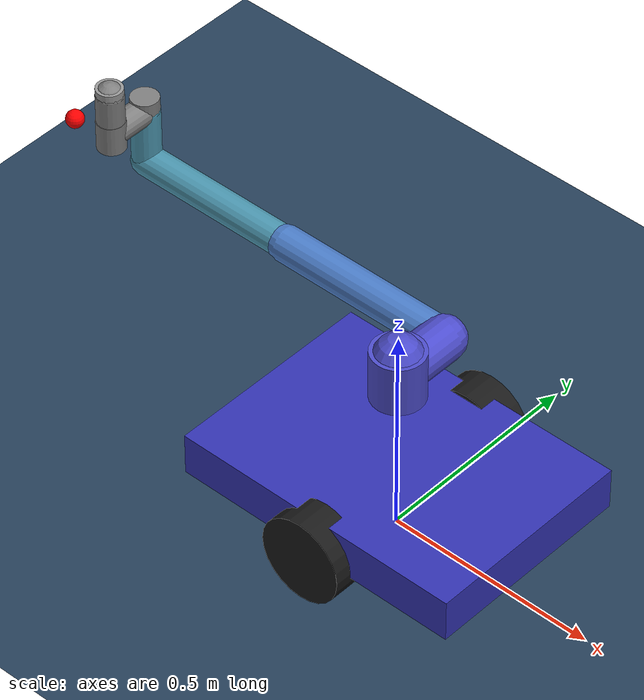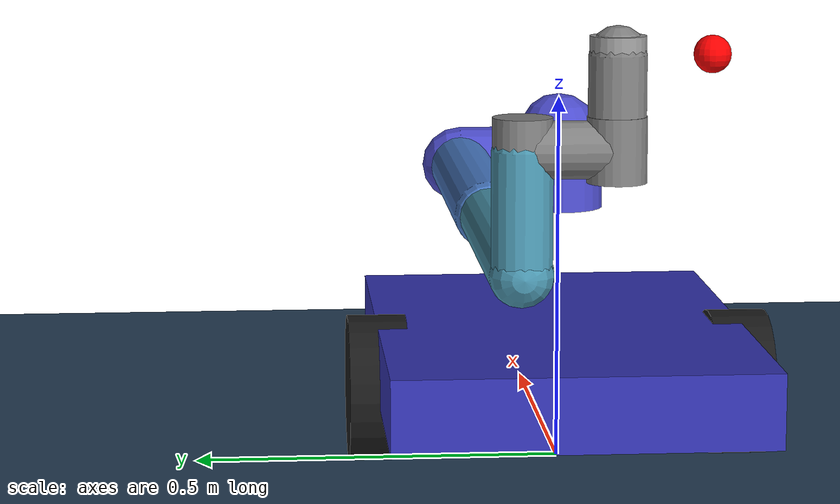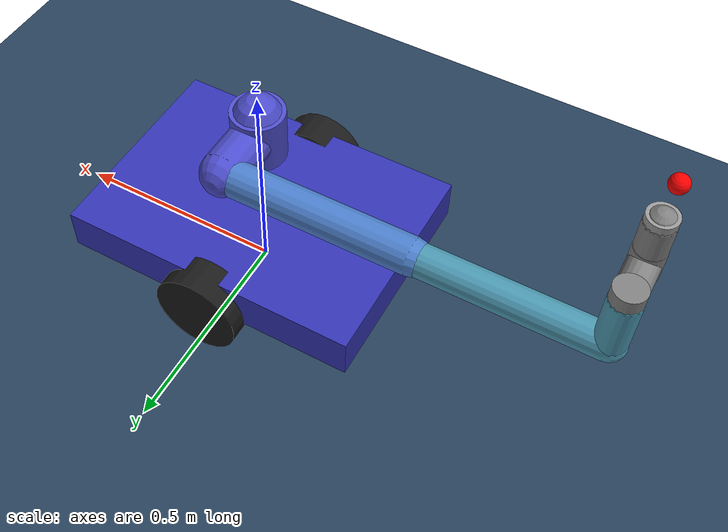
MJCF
<mujoco model="wheeled_ur5e_with_wheels">
  <compiler angle="radian"/>

  <option integrator="implicitfast"/>

  <visual>
    <global azimuth="120" elevation="-20"/>
    <headlight ambient="0.3 0.3 0.3" diffuse="0.6 0.6 0.6" specular="0 0 0"/>
    <map force="0.1" zfar="30"/>
    <rgba haze="0.15 0.25 0.35 1"/>
  </visual>

  <default>
    <joint limited="true"/>
    <geom solref="0.008"/>
    <general ctrllimited="true"/>
  </default>

  <asset>
    <texture type="skybox" colorspace="auto" builtin="gradient" rgb1="0.3 0.5 0.7" rgb2="0 0 0" width="512" height="3072"/>
    <texture type="2d" colorspace="auto" name="groundplane" builtin="checker" mark="edge" rgb1="0.2 0.3 0.4" rgb2="0.1 0.2 0.3" markrgb="0.8 0.8 0.8" width="300" height="300"/>
    <material name="groundplane" texture="groundplane" texuniform="true" texrepeat="5 5" reflectance="0.2"/>
  </asset>

  <worldbody>
    <geom name="floor" size="0 0 0.05" type="plane" material="groundplane"/>
    <light pos="0 0 3.5" dir="0 0 -1" type="directional" diffuse="0.4 0.4 0.4" specular="0.1 0.1 0.1"/>
    <light pos="1.5 1.5 2.5" dir="-0.485071 -0.485071 -0.727607" diffuse="0.5 0.5 0.5"/>
    <body name="base_x_body">
      <inertial pos="0 0 0" mass="0.1" diaginertia="0.01 0.01 0.01"/>
      <joint name="base_x" pos="0 0 0" axis="1 0 0" type="slide" range="-5 5"/>
      <body name="base_y_body">
        <inertial pos="0 0 0" mass="0.1" diaginertia="0.01 0.01 0.01"/>
        <joint name="base_y" pos="0 0 0" axis="0 1 0" type="slide" range="-5 5"/>
        <body name="base_yaw_body">
          <inertial pos="0 0 0" mass="0.1" diaginertia="0.01 0.01 0.01"/>
          <joint name="base_yaw" pos="0 0 0" axis="0 0 1" range="-6.2832 6.2832"/>
          <body name="base_z_body">
            <inertial pos="0 0 0" mass="0.1" diaginertia="0.01 0.01 0.01"/>
            <joint name="base_z" pos="0 0 0" axis="0 0 1" type="slide" range="0 0.5"/>
            <body name="chassis" pos="0 0 0.14">
              <inertial pos="0 0 0" mass="30" diaginertia="1 1 0.5"/>
              <geom size="0.35 0.25 0.05" type="box" rgba="0.2 0.2 0.7 1"/>
              <body name="left_wheel_body" pos="0 0.25 -0.04">
                <inertial pos="0 0 0" mass="2" diaginertia="0.01 0.01 0.01"/>
                <joint name="left_wheel_joint" pos="0 0 0" axis="0 1 0" range="-100 100" armature="0.01" damping="0.1"/>
                <geom size="0.1 0.04" quat="0.707105 0.707108 0 0" type="cylinder" rgba="0.1 0.1 0.1 1"/>
              </body>
              <body name="right_wheel_body" pos="0 -0.25 -0.04">
                <inertial pos="0 0 0" mass="2" diaginertia="0.01 0.01 0.01"/>
                <joint name="right_wheel_joint" pos="0 0 0" axis="0 1 0" range="-100 100" armature="0.01" damping="0.1"/>
                <geom size="0.1 0.04" quat="0.707105 0.707108 0 0" type="cylinder" rgba="0.1 0.1 0.1 1"/>
              </body>
              <body name="shoulder_link" pos="0 0 0.27">
                <inertial pos="0 0 0" mass="3.761" diaginertia="0.01 0.01 0.01"/>
                <joint name="shoulder_pan_joint" pos="0 0 0" axis="0 0 1" range="-6.2832 6.2832" armature="0.1" damping="1"/>
                <geom size="0.06 0.06" type="cylinder" rgba="0.3 0.3 0.8 1"/>
                <geom size="0.055 0.02" pos="0 0 0.02" quat="0 1 0 0" type="capsule" rgba="0.3 0.3 0.8 1"/>
                <geom size="0.05 0.0679" pos="0 0.0679 0" quat="0.707107 0.707107 0 0" type="capsule" rgba="0.3 0.3 0.8 1"/>
                <body name="upper_arm_link" pos="0 0.1358 0">
                  <inertial pos="-0.2125 0 0" mass="8.058" diaginertia="0.2 0.2 0.01"/>
                  <joint name="shoulder_lift_joint" pos="0 0 0" axis="0 1 0" range="-6.2832 6.2832" armature="0.1" damping="1"/>
                  <geom size="0.04 0.2125" pos="-0.2125 0 0" quat="0.707107 0 0.707107 0" type="capsule" rgba="0.3 0.5 0.8 1"/>
                  <body name="forearm_link" pos="-0.425 0 0">
                    <inertial pos="-0.1961 0 0.067" mass="2.846" diaginertia="0.05 0.05 0.01"/>
                    <joint name="elbow_joint" pos="0 0 0" axis="0 1 0" range="-3.1416 3.1416" armature="0.1" damping="0.5"/>
                    <geom size="0.035 0.1961" pos="-0.1961 0 0" quat="0.707107 0 0.707107 0" type="capsule" rgba="0.3 0.6 0.7 1"/>
                    <geom size="0.033 0.06665" pos="-0.3922 0 0.06665" quat="0 1 0 0" type="capsule" rgba="0.3 0.6 0.7 1"/>
                    <body name="wrist_1_link" pos="-0.3922 0 0.1333">
                      <inertial pos="0 -0.05 0" mass="1.37" diaginertia="0.005 0.005 0.005"/>
                      <joint name="wrist_1_joint" pos="0 0 0" axis="0 1 0" range="-6.2832 6.2832" armature="0.01" damping="0.1"/>
                      <geom size="0.032 0.035" type="cylinder"/>
                      <geom size="0.031 0.04985" pos="0 -0.04985 0" quat="0.707107 -0.707107 0 0" type="capsule"/>
                      <body name="wrist_2_link" pos="0 -0.0997 0">
                        <inertial pos="0 0 0.05" mass="1.37" diaginertia="0.005 0.005 0.005"/>
                        <joint name="wrist_2_joint" pos="0 0 0" axis="0 0 1" range="-6.2832 6.2832" armature="0.01" damping="0.1"/>
                        <geom size="0.032 0.035" type="cylinder"/>
                        <geom size="0.031 0.0498" pos="0 0 0.0498" quat="0 1 0 0" type="capsule"/>
                        <body name="wrist_3_link" pos="0 0 0.0996">
                          <inertial pos="0 -0.05 0" mass="0.195" diaginertia="0.001 0.001 0.001"/>
                          <joint name="wrist_3_joint" pos="0 0 0" axis="0 1 0" range="-6.2832 6.2832" armature="0.01" damping="0.1"/>
                          <geom size="0.03 0.02" type="cylinder" rgba="0.6 0.6 0.6 1"/>
                          <site name="ee_site" pos="0 -0.0996 0" size="0.02" rgba="1 0 0 1"/>
                        </body>
                      </body>
                    </body>
                  </body>
                </body>
              </body>
            </body>
          </body>
        </body>
      </body>
    </body>
  </worldbody>

  <actuator>
    <general name="act_base_x" joint="base_x" ctrlrange="-1 1" biastype="affine" gainprm="100" biasprm="0 0 -100"/>
    <general name="act_base_y" joint="base_y" ctrlrange="-1 1" biastype="affine" gainprm="100" biasprm="0 0 -100"/>
    <general name="act_base_z" joint="base_z" ctrlrange="-0.5 0.5" biastype="affine" gainprm="100" biasprm="0 0 -100"/>
    <general name="act_base_yaw" joint="base_yaw" ctrlrange="-3.14 3.14" biastype="affine" gainprm="50" biasprm="0 0 -50"/>
    <general name="act_left_wheel" joint="left_wheel_joint" ctrlrange="-10 10" gear="50 0 0 0 0 0"/>
    <general name="act_right_wheel" joint="right_wheel_joint" ctrlrange="-10 10" gear="50 0 0 0 0 0"/>
    <general name="act_shoulder_pan" joint="shoulder_pan_joint" ctrlrange="-150 150"/>
    <general name="act_shoulder_lift" joint="shoulder_lift_joint" ctrlrange="-150 150"/>
    <general name="act_elbow" joint="elbow_joint" ctrlrange="-150 150"/>
    <general name="act_wrist_1" joint="wrist_1_joint" ctrlrange="-28 28"/>
    <general name="act_wrist_2" joint="wrist_2_joint" ctrlrange="-28 28"/>
    <general name="act_wrist_3" joint="wrist_3_joint" ctrlrange="-28 28"/>
  </actuator>
</mujoco>
